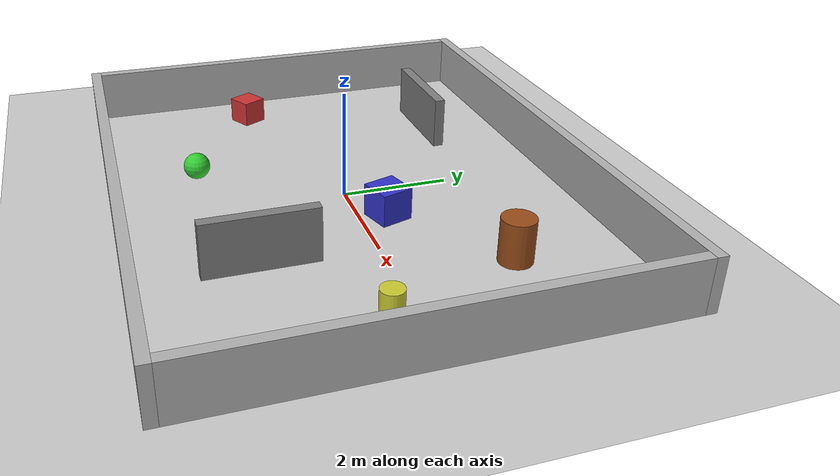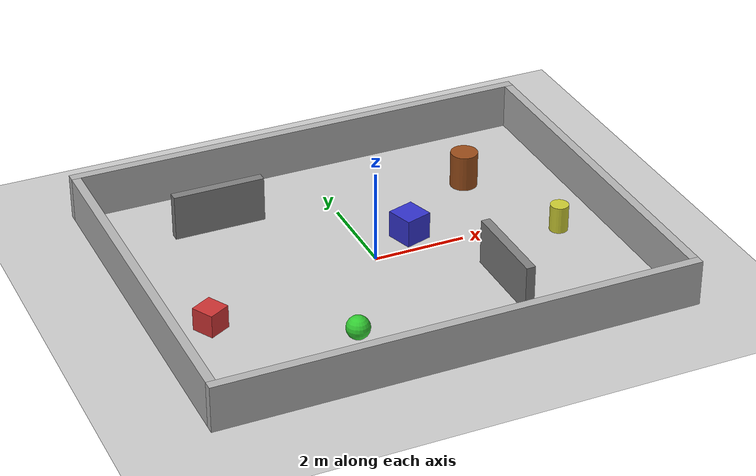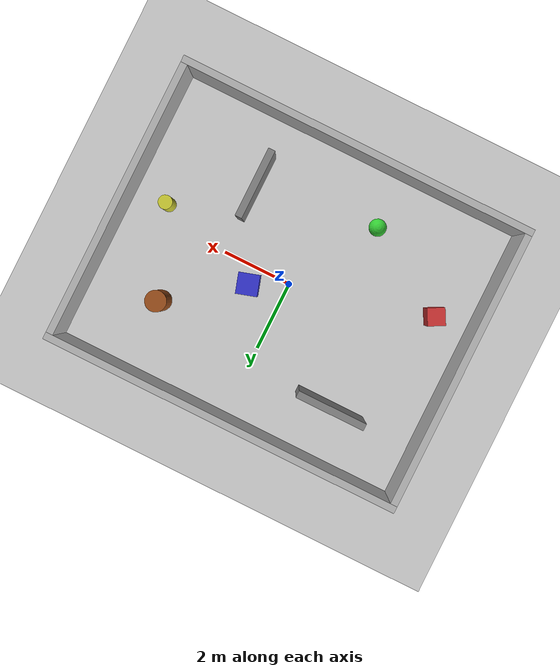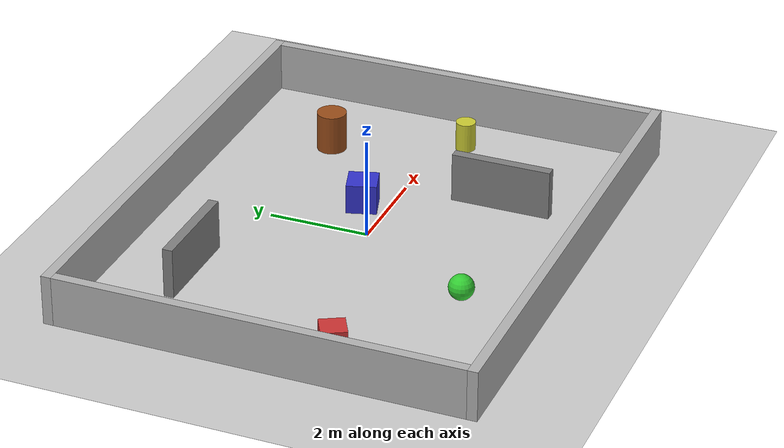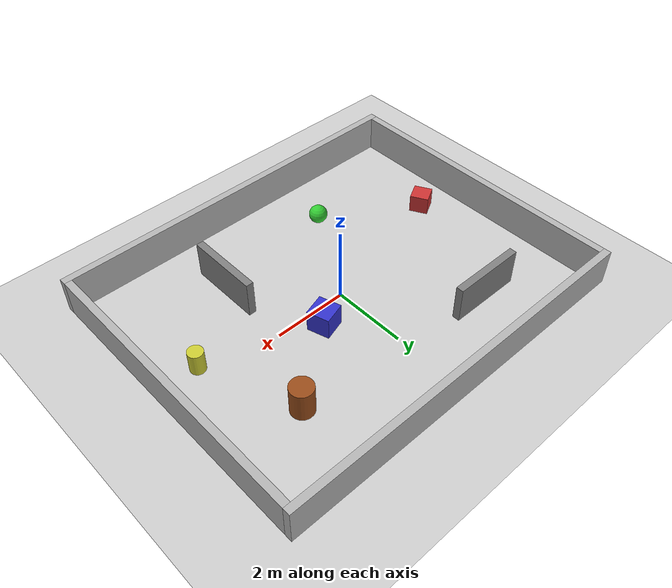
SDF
<?xml version="1.0" ?>
<sdf version="1.8">
  <world name="world_10_challenge">
    <!-- Physics -->
    <physics name="1ms" type="ignored">
      <max_step_size>0.001</max_step_size>
      <real_time_factor>1.0</real_time_factor>
    </physics>

    <!-- Plugins -->
    <plugin filename="gz-sim-physics-system" name="gz::sim::systems::Physics"/>
    <plugin filename="gz-sim-user-commands-system" name="gz::sim::systems::UserCommands"/>
    <plugin filename="gz-sim-scene-broadcaster-system" name="gz::sim::systems::SceneBroadcaster"/>
    <plugin filename="gz-sim-sensors-system" name="gz::sim::systems::Sensors">
      <render_engine>ogre2</render_engine>
    </plugin>

    <!-- Lighting -->
    <light type="directional" name="sun">
      <cast_shadows>true</cast_shadows>
      <pose>0 0 10 0 0 0</pose>
      <diffuse>0.8 0.8 0.8 1</diffuse>
      <specular>0.2 0.2 0.2 1</specular>
      <attenuation>
        <range>1000</range>
        <constant>0.9</constant>
        <linear>0.01</linear>
        <quadratic>0.001</quadratic>
      </attenuation>
      <direction>-0.5 0.1 -0.9</direction>
    </light>

    <!-- Ground Plane -->
    <model name="ground_plane">
      <static>true</static>
      <link name="link">
        <collision name="collision">
          <geometry>
            <plane>
              <normal>0 0 1</normal>
              <size>100 100</size>
            </plane>
          </geometry>
        </collision>
        <visual name="visual">
          <geometry>
            <plane>
              <normal>0 0 1</normal>
              <size>100 100</size>
            </plane>
          </geometry>
          <material>
            <ambient>0.8 0.8 0.8 1</ambient>
            <diffuse>0.8 0.8 0.8 1</diffuse>
            <specular>0.8 0.8 0.8 1</specular>
          </material>
        </visual>
      </link>
    </model>

    <!-- Walls - Rectangular arena 10m x 8m -->
    <!-- North Wall -->
    <model name="wall_north">
      <static>true</static>
      <pose>0 4.1 0.5 0 0 0</pose>
      <link name="link">
        <collision name="collision">
          <geometry>
            <box>
              <size>10.4 0.2 1.0</size>
            </box>
          </geometry>
        </collision>
        <visual name="visual">
          <geometry>
            <box>
              <size>10.4 0.2 1.0</size>
            </box>
          </geometry>
          <material>
            <ambient>0.5 0.5 0.5 1</ambient>
            <diffuse>0.7 0.7 0.7 1</diffuse>
            <specular>0.1 0.1 0.1 1</specular>
          </material>
        </visual>
      </link>
    </model>

    <!-- South Wall -->
    <model name="wall_south">
      <static>true</static>
      <pose>0 -4.1 0.5 0 0 0</pose>
      <link name="link">
        <collision name="collision">
          <geometry>
            <box>
              <size>10.4 0.2 1.0</size>
            </box>
          </geometry>
        </collision>
        <visual name="visual">
          <geometry>
            <box>
              <size>10.4 0.2 1.0</size>
            </box>
          </geometry>
          <material>
            <ambient>0.5 0.5 0.5 1</ambient>
            <diffuse>0.7 0.7 0.7 1</diffuse>
            <specular>0.1 0.1 0.1 1</specular>
          </material>
        </visual>
      </link>
    </model>

    <!-- East Wall -->
    <model name="wall_east">
      <static>true</static>
      <pose>5.1 0 0.5 0 0 0</pose>
      <link name="link">
        <collision name="collision">
          <geometry>
            <box>
              <size>0.2 8.0 1.0</size>
            </box>
          </geometry>
        </collision>
        <visual name="visual">
          <geometry>
            <box>
              <size>0.2 8.0 1.0</size>
            </box>
          </geometry>
          <material>
            <ambient>0.5 0.5 0.5 1</ambient>
            <diffuse>0.7 0.7 0.7 1</diffuse>
            <specular>0.1 0.1 0.1 1</specular>
          </material>
        </visual>
      </link>
    </model>

    <!-- West Wall -->
    <model name="wall_west">
      <static>true</static>
      <pose>-5.1 0 0.5 0 0 0</pose>
      <link name="link">
        <collision name="collision">
          <geometry>
            <box>
              <size>0.2 8.0 1.0</size>
            </box>
          </geometry>
        </collision>
        <visual name="visual">
          <geometry>
            <box>
              <size>0.2 8.0 1.0</size>
            </box>
          </geometry>
          <material>
            <ambient>0.5 0.5 0.5 1</ambient>
            <diffuse>0.7 0.7 0.7 1</diffuse>
            <specular>0.1 0.1 0.1 1</specular>
          </material>
        </visual>
      </link>
    </model>

    <!-- Challenge course - Mixed obstacles of various types -->
    <!-- Internal wall segment -->
    <model name="barrier_1">
      <static>true</static>
      <pose>-2.5 2.5 0.5 0 0 0</pose>
      <link name="link">
        <collision name="collision">
          <geometry>
            <box>
              <size>2.0 0.2 1.0</size>
            </box>
          </geometry>
        </collision>
        <visual name="visual">
          <geometry>
            <box>
              <size>2.0 0.2 1.0</size>
            </box>
          </geometry>
          <material>
            <ambient>0.4 0.4 0.4 1</ambient>
            <diffuse>0.5 0.5 0.5 1</diffuse>
            <specular>0.1 0.1 0.1 1</specular>
          </material>
        </visual>
      </link>
    </model>

    <!-- Cylindrical pillar -->
    <model name="pillar_1">
      <static>true</static>
      <pose>3.0 2.0 0.4 0 0 0</pose>
      <link name="link">
        <collision name="collision">
          <geometry>
            <cylinder>
              <radius>0.3</radius>
              <length>0.8</length>
            </cylinder>
          </geometry>
        </collision>
        <visual name="visual">
          <geometry>
            <cylinder>
              <radius>0.3</radius>
              <length>0.8</length>
            </cylinder>
          </geometry>
          <material>
            <ambient>0.6 0.3 0.1 1</ambient>
            <diffuse>0.6 0.3 0.1 1</diffuse>
            <specular>0.1 0.1 0.1 1</specular>
          </material>
        </visual>
      </link>
    </model>

    <!-- Box obstacles -->
    <model name="box_1">
      <static>true</static>
      <pose>-4.0 -1.0 0.25 0 0 0.5</pose>
      <link name="link">
        <collision name="collision">
          <geometry>
            <box>
              <size>0.5 0.5 0.5</size>
            </box>
          </geometry>
        </collision>
        <visual name="visual">
          <geometry>
            <box>
              <size>0.5 0.5 0.5</size>
            </box>
          </geometry>
          <material>
            <ambient>0.8 0.2 0.2 1</ambient>
            <diffuse>0.8 0.2 0.2 1</diffuse>
            <specular>0.1 0.1 0.1 1</specular>
          </material>
        </visual>
      </link>
    </model>

    <model name="box_2">
      <static>true</static>
      <pose>1.0 0.5 0.3 0 0 0.3</pose>
      <link name="link">
        <collision name="collision">
          <geometry>
            <box>
              <size>0.6 0.6 0.6</size>
            </box>
          </geometry>
        </collision>
        <visual name="visual">
          <geometry>
            <box>
              <size>0.6 0.6 0.6</size>
            </box>
          </geometry>
          <material>
            <ambient>0.2 0.2 0.8 1</ambient>
            <diffuse>0.2 0.2 0.8 1</diffuse>
            <specular>0.1 0.1 0.1 1</specular>
          </material>
        </visual>
      </link>
    </model>

    <!-- Another wall segment -->
    <model name="barrier_2">
      <static>true</static>
      <pose>2.0 -2.0 0.5 0 0 1.5708</pose>
      <link name="link">
        <collision name="collision">
          <geometry>
            <box>
              <size>2.0 0.2 1.0</size>
            </box>
          </geometry>
        </collision>
        <visual name="visual">
          <geometry>
            <box>
              <size>2.0 0.2 1.0</size>
            </box>
          </geometry>
          <material>
            <ambient>0.4 0.4 0.4 1</ambient>
            <diffuse>0.5 0.5 0.5 1</diffuse>
            <specular>0.1 0.1 0.1 1</specular>
          </material>
        </visual>
      </link>
    </model>

    <!-- Sphere obstacle -->
    <model name="sphere_1">
      <static>true</static>
      <pose>-1.5 -2.5 0.25 0 0 0</pose>
      <link name="link">
        <collision name="collision">
          <geometry>
            <sphere>
              <radius>0.25</radius>
            </sphere>
          </geometry>
        </collision>
        <visual name="visual">
          <geometry>
            <sphere>
              <radius>0.25</radius>
            </sphere>
          </geometry>
          <material>
            <ambient>0.2 0.8 0.2 1</ambient>
            <diffuse>0.2 0.8 0.2 1</diffuse>
            <specular>0.1 0.1 0.1 1</specular>
          </material>
        </visual>
      </link>
    </model>

    <!-- Small cylinder -->
    <model name="pillar_2">
      <static>true</static>
      <pose>4.0 -0.5 0.3 0 0 0</pose>
      <link name="link">
        <collision name="collision">
          <geometry>
            <cylinder>
              <radius>0.2</radius>
              <length>0.6</length>
            </cylinder>
          </geometry>
        </collision>
        <visual name="visual">
          <geometry>
            <cylinder>
              <radius>0.2</radius>
              <length>0.6</length>
            </cylinder>
          </geometry>
          <material>
            <ambient>0.8 0.8 0.2 1</ambient>
            <diffuse>0.8 0.8 0.2 1</diffuse>
            <specular>0.1 0.1 0.1 1</specular>
          </material>
        </visual>
      </link>
    </model>

  </world>
</sdf>
